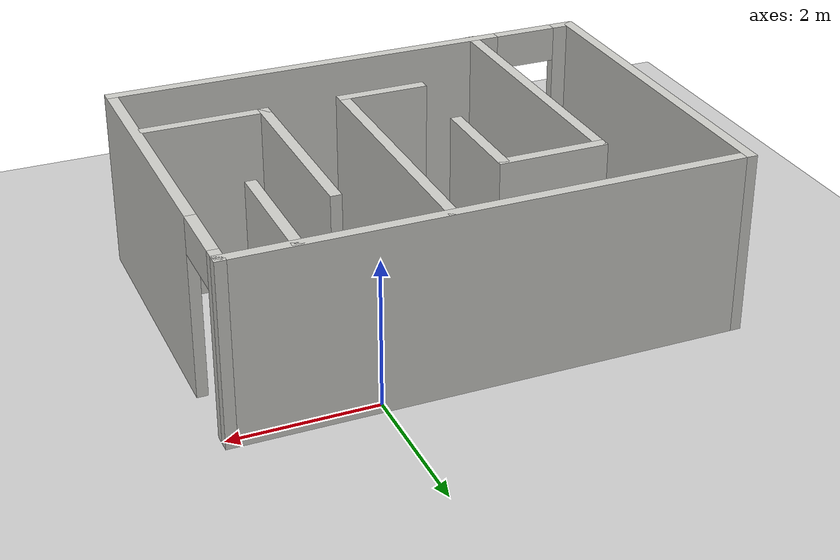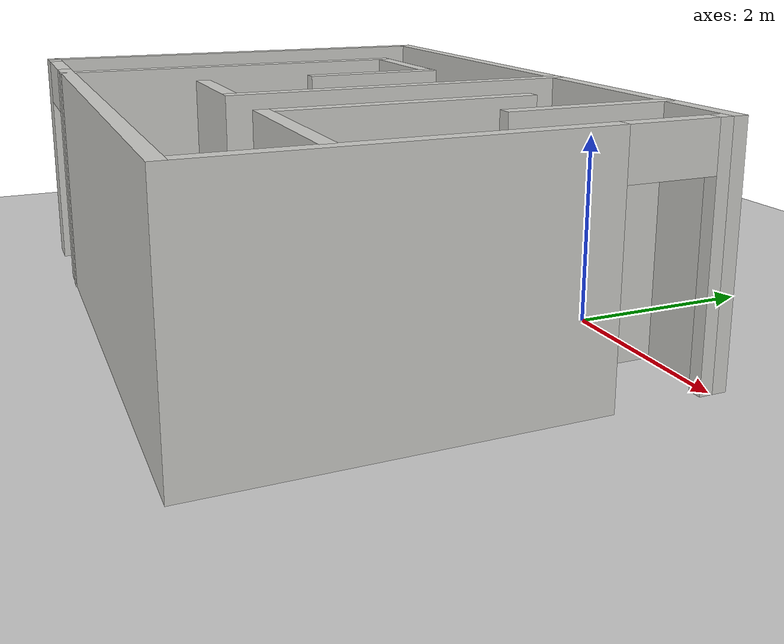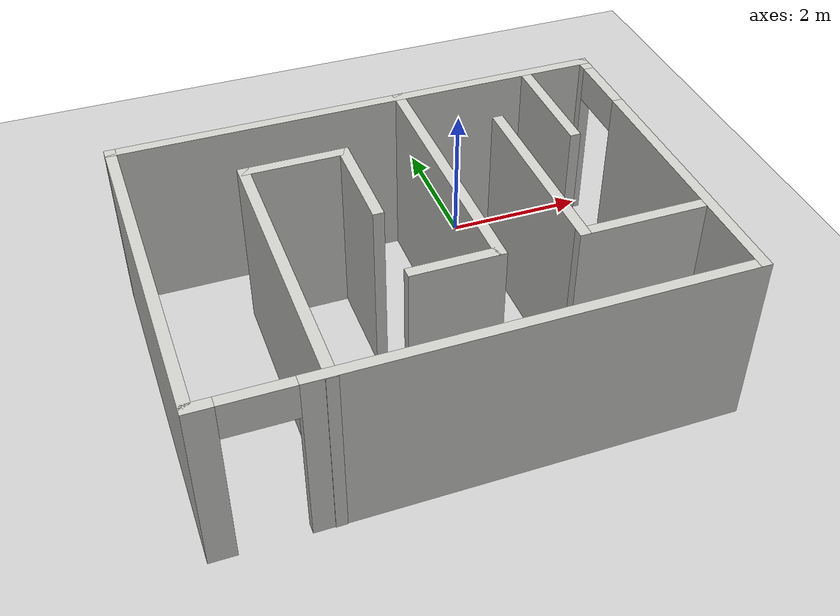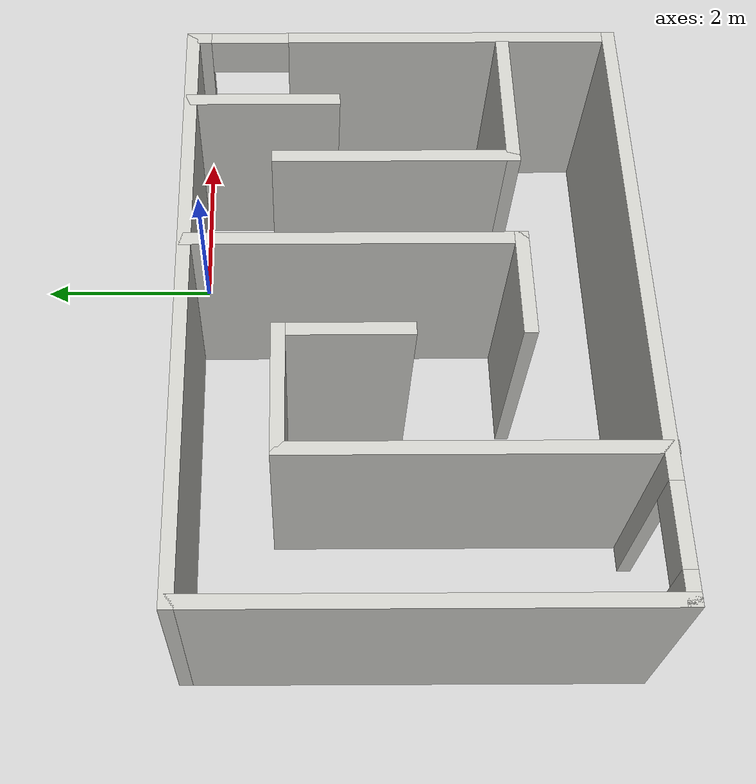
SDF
<sdf version="1.6">
 <world name="default">
  <light name="sun" type="directional">
   <pose>0 0 10 0 -0 0</pose>
   <diffuse>0.8 0.8 0.8 1</diffuse>
   <specular>0.2 0.2 0.2 1</specular>
   <attenuation>
    <range>1000</range>
    <constant>0.9</constant>
    <linear>0.01</linear>
    <quadratic>0.001</quadratic>
   </attenuation>
   <direction>-0.5 0.1 -0.9</direction>
  </light>
  <model name="ground_plane">
   <static>1</static>
   <link name="link">
    <collision name="collision">
     <geometry><plane><normal>0 0 1</normal><size>100 100</size></plane></geometry>
     <surface>
      <contact><collide_bitmask>65535</collide_bitmask></contact>
      <friction><ode><mu>100</mu><mu2>50</mu2></ode></friction>
     </surface>
    </collision>
    <visual name="visual">
     <cast_shadows>0</cast_shadows>
     <geometry><plane><normal>0 0 1</normal><size>100 100</size></plane></geometry>
     <material>
      <script><uri>file://media/materials/scripts/gazebo.material</uri><name>Gazebo/Grey</name></script>
     </material>
    </visual>
   </link>
  </model>
  <gravity>0 0 -9.8</gravity>
  <magnetic_field>6e-06 2.3e-05 -4.2e-05</magnetic_field>
  <atmosphere type="adiabatic"/>
  <physics name="default_physics" default="0" type="ode">
   <max_step_size>0.001</max_step_size>
   <real_time_factor>1</real_time_factor>
   <real_time_update_rate>1000</real_time_update_rate>
  </physics>
  <scene><ambient>0.4 0.4 0.4 1</ambient><background>0.7 0.7 0.7 1</background><shadows>1</shadows></scene>
  <audio><device>default</device></audio>
  <spherical_coordinates>
   <surface_model>EARTH_WGS84</surface_model>
   <latitude_deg>0</latitude_deg>
   <longitude_deg>0</longitude_deg>
   <elevation>0</elevation>
   <heading_deg>0</heading_deg>
  </spherical_coordinates>
  <model name="hamer_maze">
   <pose>-1.465 -2.33964 0 0 -0 0</pose>
   <link name="Wall_0">
    <collision name="Wall_0_Collision">
     <geometry><box><size>5 0.15 2.5</size></box></geometry>
     <pose>0 0 1.25 0 -0 0</pose>
    </collision>
    <visual name="Wall_0_Visual">
     <pose>0 0 1.25 0 -0 0</pose>
     <geometry><box><size>5 0.15 2.5</size></box></geometry>
     <material>
      <script><uri>file://media/materials/scripts/gazebo.material</uri><name>Gazebo/CeilingTiled</name></script>
      <ambient>1 1 1 1</ambient>
     </material>
     <meta><layer>0</layer></meta>
    </visual>
    <pose>-3.425 0.004642 0 0 -0 -1.5708</pose>
   </link>
   <link name="Wall_1">
    <pose>-0 -2.42036 0 0 -0 0</pose>
    <visual name="Wall_1_Visual_0">
     <pose>-3.31653 0 1.25 0 -0 0</pose>
     <geometry><box><size>0.366947 0.15 2.5</size></box></geometry>
     <material>
      <script><uri>file://media/materials/scripts/gazebo.material</uri><name>Gazebo/CeilingTiled</name></script>
      <ambient>1 1 1 1</ambient>
     </material>
     <meta><layer>0</layer></meta>
    </visual>
    <collision name="Wall_1_Collision_0">
     <geometry><box><size>0.366947 0.15 2.5</size></box></geometry>
     <pose>-3.31653 0 1.25 0 -0 0</pose>
    </collision>
    <visual name="Wall_1_Visual_1">
     <pose>0.633474 0 1.25 0 -0 0</pose>
     <geometry><box><size>5.73305 0.15 2.5</size></box></geometry>
     <material>
      <script><uri>file://media/materials/scripts/gazebo.material</uri><name>Gazebo/CeilingTiled</name></script>
      <ambient>1 1 1 1</ambient>
     </material>
     <meta><layer>0</layer></meta>
    </visual>
    <collision name="Wall_1_Collision_1">
     <geometry><box><size>5.73305 0.15 2.5</size></box></geometry>
     <pose>0.633474 0 1.25 0 -0 0</pose>
    </collision>
    <visual name="Wall_1_Visual_2">
     <pose>-2.68305 0 2.25 0 -0 0</pose>
     <geometry><box><size>0.9 0.15 0.5</size></box></geometry>
     <material>
      <script><uri>file://media/materials/scripts/gazebo.material</uri><name>Gazebo/CeilingTiled</name></script>
      <ambient>1 1 1 1</ambient>
     </material>
     <meta><layer>0</layer></meta>
    </visual>
    <collision name="Wall_1_Collision_2">
     <geometry><box><size>0.9 0.15 0.5</size></box></geometry>
     <pose>-2.68305 0 2.25 0 -0 0</pose>
    </collision>
   </link>
   <link name="Wall_10">
    <collision name="Wall_10_Collision">
     <geometry><box><size>1.25 0.15 2.5</size></box></geometry>
     <pose>0 0 1.25 0 -0 0</pose>
    </collision>
    <visual name="Wall_10_Visual">
     <pose>0 0 1.25 0 -0 0</pose>
     <geometry><box><size>1.25 0.15 2.5</size></box></geometry>
     <material>
      <script><uri>file://media/materials/scripts/gazebo.material</uri><name>Gazebo/CeilingTiled</name></script>
      <ambient>1 1 1 1</ambient>
     </material>
     <meta><layer>0</layer></meta>
    </visual>
    <pose>0.041799 -1.17398 0 0 -0 0</pose>
   </link>
   <link name="Wall_11">
    <collision name="Wall_11_Collision">
     <geometry><box><size>3.75 0.15 2.5</size></box></geometry>
     <pose>0 0 1.25 0 -0 0</pose>
    </collision>
    <visual name="Wall_11_Visual">
     <pose>0 0 1.25 0 -0 0</pose>
     <geometry><box><size>3.75 0.15 2.5</size></box></geometry>
     <material>
      <script><uri>file://media/materials/scripts/gazebo.material</uri><name>Gazebo/CeilingTiled</name></script>
      <ambient>1 1 1 1</ambient>
     </material>
     <meta><layer>0</layer></meta>
    </visual>
    <pose>0.591799 0.626024 0 0 -0 1.5708</pose>
   </link>
   <link name="Wall_14">
    <collision name="Wall_14_Collision">
     <geometry><box><size>1.75 0.15 2.5</size></box></geometry>
     <pose>0 0 1.25 0 -0 0</pose>
    </collision>
    <visual name="Wall_14_Visual">
     <pose>0 0 1.25 0 -0 0</pose>
     <geometry><box><size>1.75 0.15 2.5</size></box></geometry>
     <material>
      <script><uri>file://media/materials/scripts/gazebo.material</uri><name>Gazebo/CeilingTiled</name></script>
      <ambient>1 1 1 1</ambient>
     </material>
     <meta><layer>0</layer></meta>
    </visual>
    <pose>2.4918 -1.17398 0 0 -0 0</pose>
   </link>
   <link name="Wall_16">
    <collision name="Wall_16_Collision">
     <geometry><box><size>2.75 0.15 2.5</size></box></geometry>
     <pose>0 0 1.25 0 -0 0</pose>
    </collision>
    <visual name="Wall_16_Visual">
     <pose>0 0 1.25 0 -0 0</pose>
     <geometry><box><size>2.75 0.15 2.5</size></box></geometry>
     <material>
      <script><uri>file://media/materials/scripts/gazebo.material</uri><name>Gazebo/CeilingTiled</name></script>
      <ambient>1 1 1 1</ambient>
     </material>
     <meta><layer>0</layer></meta>
    </visual>
    <pose>1.6918 0.126024 0 0 -0 1.5708</pose>
   </link>
   <link name="Wall_18">
    <collision name="Wall_18_Collision">
     <geometry><box><size>1.75 0.15 2.5</size></box></geometry>
     <pose>0 0 1.25 0 -0 0</pose>
    </collision>
    <visual name="Wall_18_Visual">
     <pose>0 0 1.25 0 -0 0</pose>
     <geometry><box><size>1.75 0.15 2.5</size></box></geometry>
     <material>
      <script><uri>file://media/materials/scripts/gazebo.material</uri><name>Gazebo/CeilingTiled</name></script>
      <ambient>1 1 1 1</ambient>
     </material>
     <meta><layer>0</layer></meta>
    </visual>
    <pose>2.50313 1.60674 0 0 -0 -1.5708</pose>
   </link>
   <link name="Wall_2">
    <pose>3.425 0.004642 0 0 -0 1.5708</pose>
    <visual name="Wall_2_Visual_0">
     <pose>-0.593335 0 1.25 0 -0 0</pose>
     <geometry><box><size>3.81333 0.15 2.5</size></box></geometry>
     <material>
      <script><uri>file://media/materials/scripts/gazebo.material</uri><name>Gazebo/CeilingTiled</name></script>
      <ambient>1 1 1 1</ambient>
     </material>
     <meta><layer>0</layer></meta>
    </visual>
    <collision name="Wall_2_Collision_0">
     <geometry><box><size>3.81333 0.15 2.5</size></box></geometry>
     <pose>-0.593335 0 1.25 0 -0 0</pose>
    </collision>
    <visual name="Wall_2_Visual_1">
     <pose>2.35667 0 1.25 0 -0 0</pose>
     <geometry><box><size>0.28667 0.15 2.5</size></box></geometry>
     <material>
      <script><uri>file://media/materials/scripts/gazebo.material</uri><name>Gazebo/CeilingTiled</name></script>
      <ambient>1 1 1 1</ambient>
     </material>
     <meta><layer>0</layer></meta>
    </visual>
    <collision name="Wall_2_Collision_1">
     <geometry><box><size>0.28667 0.15 2.5</size></box></geometry>
     <pose>2.35667 0 1.25 0 -0 0</pose>
    </collision>
    <visual name="Wall_2_Visual_2">
     <pose>1.76333 0 2.25 0 -0 0</pose>
     <geometry><box><size>0.9 0.15 0.5</size></box></geometry>
     <material>
      <script><uri>file://media/materials/scripts/gazebo.material</uri><name>Gazebo/CeilingTiled</name></script>
      <ambient>1 1 1 1</ambient>
     </material>
     <meta><layer>0</layer></meta>
    </visual>
    <collision name="Wall_2_Collision_2">
     <geometry><box><size>0.9 0.15 0.5</size></box></geometry>
     <pose>1.76333 0 2.25 0 -0 0</pose>
    </collision>
   </link>
   <link name="Wall_4">
    <collision name="Wall_4_Collision">
     <geometry><box><size>7 0.15 2.5</size></box></geometry>
     <pose>0 0 1.25 0 -0 0</pose>
    </collision>
    <visual name="Wall_4_Visual">
     <pose>0 0 1.25 0 -0 0</pose>
     <geometry><box><size>7 0.15 2.5</size></box></geometry>
     <material>
      <script><uri>file://media/materials/scripts/gazebo.material</uri><name>Gazebo/CeilingTiled</name></script>
      <ambient>1 1 1 1</ambient>
     </material>
     <meta><layer>0</layer></meta>
    </visual>
    <pose>-0 2.42964 0 0 -0 0</pose>
   </link>
   <link name="Wall_6">
    <collision name="Wall_6_Collision">
     <geometry><box><size>4 0.15 2.5</size></box></geometry>
     <pose>0 0 1.25 0 -0 0</pose>
    </collision>
    <visual name="Wall_6_Visual">
     <pose>0 0 1.25 0 -0 0</pose>
     <geometry><box><size>4 0.15 2.5</size></box></geometry>
     <material>
      <script><uri>file://media/materials/scripts/gazebo.material</uri><name>Gazebo/CeilingTiled</name></script>
      <ambient>1 1 1 1</ambient>
     </material>
     <meta><layer>0</layer></meta>
    </visual>
    <pose>-1.87699 -0.504643 0 0 -0 1.5708</pose>
   </link>
   <link name="Wall_7">
    <collision name="Wall_7_Collision">
     <geometry><box><size>1.5 0.15 2.5</size></box></geometry>
     <pose>0 0 1.25 0 -0 0</pose>
    </collision>
    <visual name="Wall_7_Visual">
     <pose>0 0 1.25 0 -0 0</pose>
     <geometry><box><size>1.5 0.15 2.5</size></box></geometry>
     <material>
      <script><uri>file://media/materials/scripts/gazebo.material</uri><name>Gazebo/CeilingTiled</name></script>
      <ambient>1 1 1 1</ambient>
     </material>
     <meta><layer>0</layer></meta>
    </visual>
    <pose>-1.20199 1.42036 0 0 -0 0</pose>
   </link>
   <link name="Wall_8">
    <collision name="Wall_8_Collision">
     <geometry><box><size>1.5 0.15 2.5</size></box></geometry>
     <pose>0 0 1.25 0 -0 0</pose>
    </collision>
    <visual name="Wall_8_Visual">
     <pose>0 0 1.25 0 -0 0</pose>
     <geometry><box><size>1.5 0.15 2.5</size></box></geometry>
     <material>
      <script><uri>file://media/materials/scripts/gazebo.material</uri><name>Gazebo/CeilingTiled</name></script>
      <ambient>1 1 1 1</ambient>
     </material>
     <meta><layer>0</layer></meta>
    </visual>
    <pose>-0.526989 0.745357 0 0 -0 -1.5708</pose>
   </link>
   <static>1</static>
  </model>
 </world>
</sdf>
